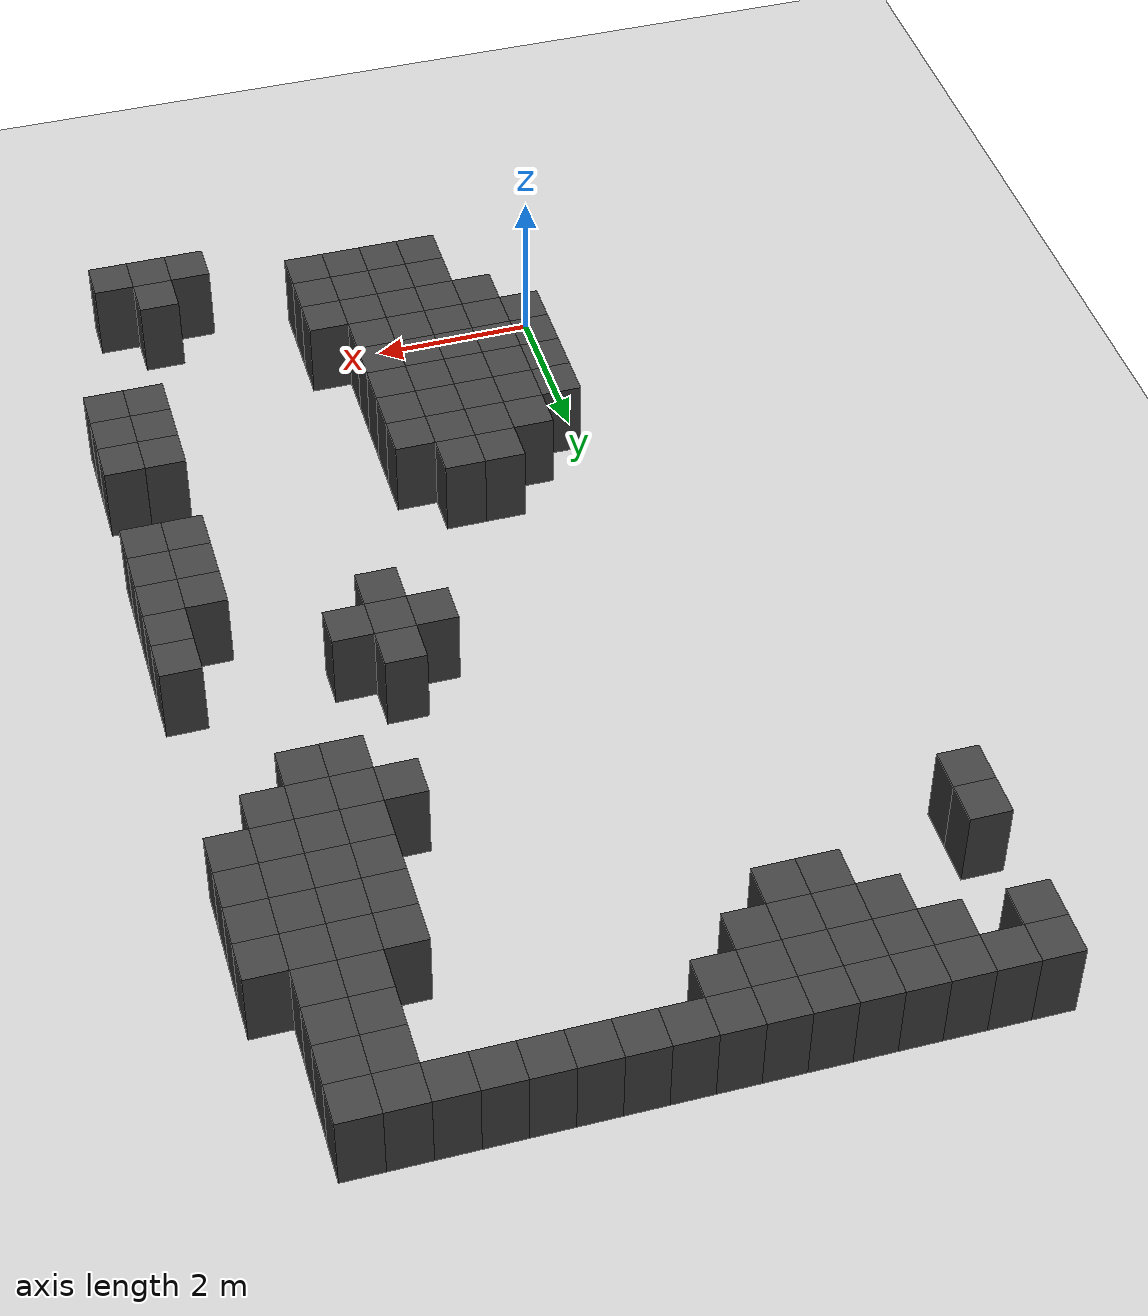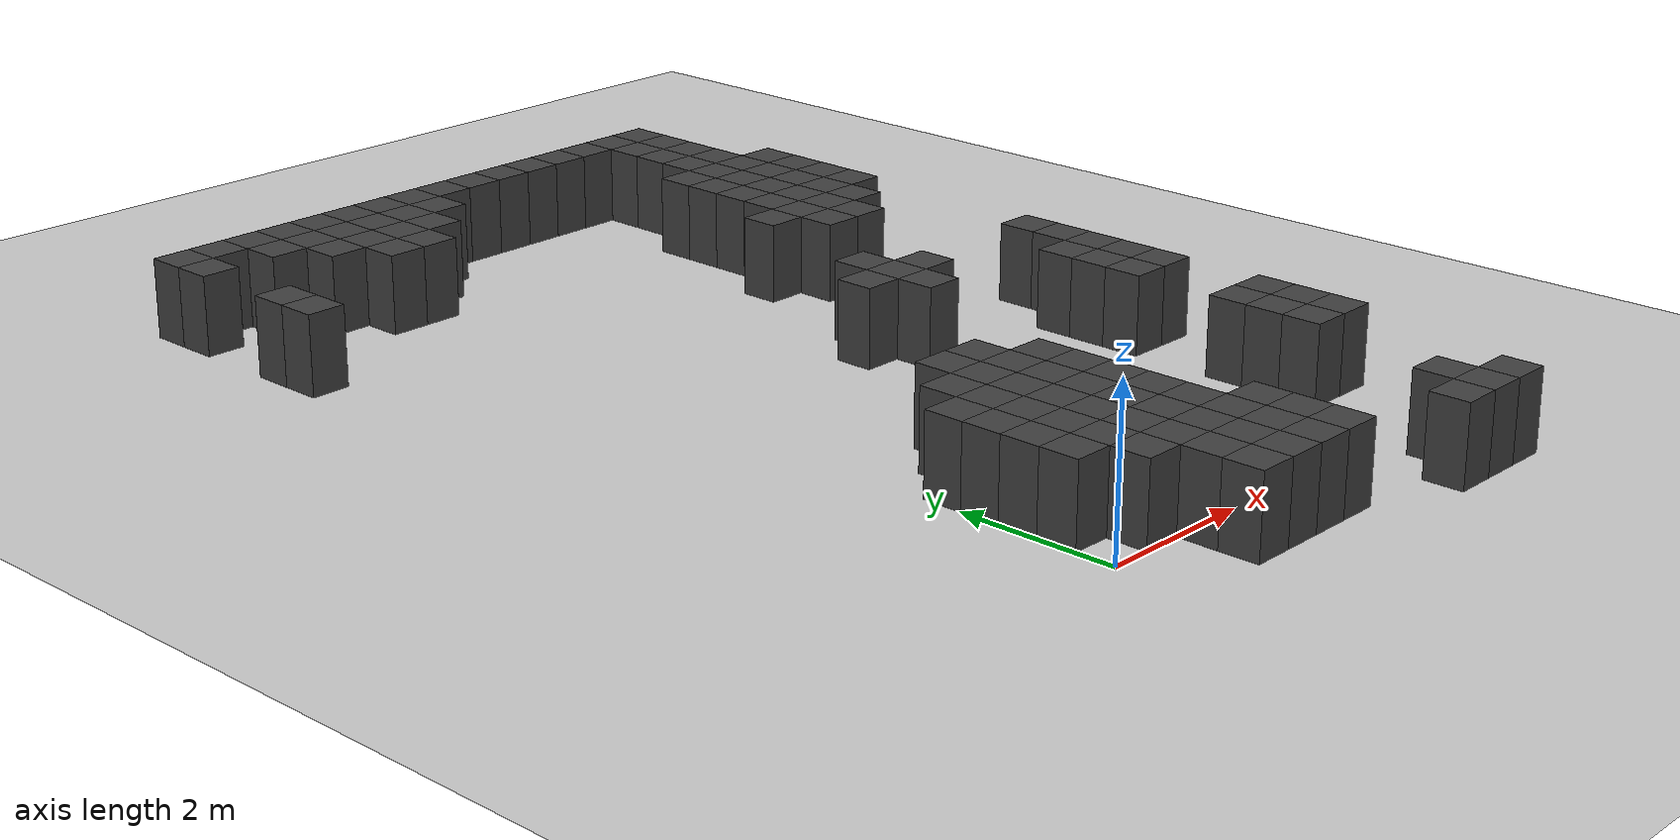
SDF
<sdf version="1.7">
 <world name="map_9381">
  <model name="ground_plane">
   <static>true</static>
   <link name="link">
    <collision name="collision">
     <geometry><plane><normal>0 0 1</normal><size>200 200</size></plane></geometry>
    </collision>
    <visual name="visual">
     <geometry><plane><normal>0 0 1</normal><size>200 200</size></plane></geometry>
     <material><ambient>0.8 0.8 0.8 1</ambient><diffuse>0.8 0.8 0.8 1</diffuse></material>
    </visual>
   </link>
  </model>
  <model name="maze_environment">
   <static>true</static>
   <link name="wall_20">
    <pose>-2.250 12.250 0.500 0 0 0</pose>
    <collision name="col"><geometry><box><size>0.5 0.5 1.0</size></box></geometry></collision>
    <visual name="vis">
     <geometry><box><size>0.5 0.5 1.0</size></box></geometry>
     <material><ambient>0.15 0.15 0.15 1</ambient><diffuse>0.25 0.25 0.25 1</diffuse></material>
    </visual>
   </link>
   <link name="wall_21">
    <pose>-1.750 12.250 0.500 0 0 0</pose>
    <collision name="col"><geometry><box><size>0.5 0.5 1.0</size></box></geometry></collision>
    <visual name="vis">
     <geometry><box><size>0.5 0.5 1.0</size></box></geometry>
     <material><ambient>0.15 0.15 0.15 1</ambient><diffuse>0.25 0.25 0.25 1</diffuse></material>
    </visual>
   </link>
   <link name="wall_22">
    <pose>-1.250 12.250 0.500 0 0 0</pose>
    <collision name="col"><geometry><box><size>0.5 0.5 1.0</size></box></geometry></collision>
    <visual name="vis">
     <geometry><box><size>0.5 0.5 1.0</size></box></geometry>
     <material><ambient>0.15 0.15 0.15 1</ambient><diffuse>0.25 0.25 0.25 1</diffuse></material>
    </visual>
   </link>
   <link name="wall_23">
    <pose>-0.750 12.250 0.500 0 0 0</pose>
    <collision name="col"><geometry><box><size>0.5 0.5 1.0</size></box></geometry></collision>
    <visual name="vis">
     <geometry><box><size>0.5 0.5 1.0</size></box></geometry>
     <material><ambient>0.15 0.15 0.15 1</ambient><diffuse>0.25 0.25 0.25 1</diffuse></material>
    </visual>
   </link>
   <link name="wall_24">
    <pose>-0.250 12.250 0.500 0 0 0</pose>
    <collision name="col"><geometry><box><size>0.5 0.5 1.0</size></box></geometry></collision>
    <visual name="vis">
     <geometry><box><size>0.5 0.5 1.0</size></box></geometry>
     <material><ambient>0.15 0.15 0.15 1</ambient><diffuse>0.25 0.25 0.25 1</diffuse></material>
    </visual>
   </link>
   <link name="wall_25">
    <pose>0.250 12.250 0.500 0 0 0</pose>
    <collision name="col"><geometry><box><size>0.5 0.5 1.0</size></box></geometry></collision>
    <visual name="vis">
     <geometry><box><size>0.5 0.5 1.0</size></box></geometry>
     <material><ambient>0.15 0.15 0.15 1</ambient><diffuse>0.25 0.25 0.25 1</diffuse></material>
    </visual>
   </link>
   <link name="wall_26">
    <pose>0.750 12.250 0.500 0 0 0</pose>
    <collision name="col"><geometry><box><size>0.5 0.5 1.0</size></box></geometry></collision>
    <visual name="vis">
     <geometry><box><size>0.5 0.5 1.0</size></box></geometry>
     <material><ambient>0.15 0.15 0.15 1</ambient><diffuse>0.25 0.25 0.25 1</diffuse></material>
    </visual>
   </link>
   <link name="wall_27">
    <pose>1.250 12.250 0.500 0 0 0</pose>
    <collision name="col"><geometry><box><size>0.5 0.5 1.0</size></box></geometry></collision>
    <visual name="vis">
     <geometry><box><size>0.5 0.5 1.0</size></box></geometry>
     <material><ambient>0.15 0.15 0.15 1</ambient><diffuse>0.25 0.25 0.25 1</diffuse></material>
    </visual>
   </link>
   <link name="wall_28">
    <pose>1.750 12.250 0.500 0 0 0</pose>
    <collision name="col"><geometry><box><size>0.5 0.5 1.0</size></box></geometry></collision>
    <visual name="vis">
     <geometry><box><size>0.5 0.5 1.0</size></box></geometry>
     <material><ambient>0.15 0.15 0.15 1</ambient><diffuse>0.25 0.25 0.25 1</diffuse></material>
    </visual>
   </link>
   <link name="wall_29">
    <pose>2.250 12.250 0.500 0 0 0</pose>
    <collision name="col"><geometry><box><size>0.5 0.5 1.0</size></box></geometry></collision>
    <visual name="vis">
     <geometry><box><size>0.5 0.5 1.0</size></box></geometry>
     <material><ambient>0.15 0.15 0.15 1</ambient><diffuse>0.25 0.25 0.25 1</diffuse></material>
    </visual>
   </link>
   <link name="wall_30">
    <pose>2.750 12.250 0.500 0 0 0</pose>
    <collision name="col"><geometry><box><size>0.5 0.5 1.0</size></box></geometry></collision>
    <visual name="vis">
     <geometry><box><size>0.5 0.5 1.0</size></box></geometry>
     <material><ambient>0.15 0.15 0.15 1</ambient><diffuse>0.25 0.25 0.25 1</diffuse></material>
    </visual>
   </link>
   <link name="wall_31">
    <pose>3.250 12.250 0.500 0 0 0</pose>
    <collision name="col"><geometry><box><size>0.5 0.5 1.0</size></box></geometry></collision>
    <visual name="vis">
     <geometry><box><size>0.5 0.5 1.0</size></box></geometry>
     <material><ambient>0.15 0.15 0.15 1</ambient><diffuse>0.25 0.25 0.25 1</diffuse></material>
    </visual>
   </link>
   <link name="wall_32">
    <pose>3.750 12.250 0.500 0 0 0</pose>
    <collision name="col"><geometry><box><size>0.5 0.5 1.0</size></box></geometry></collision>
    <visual name="vis">
     <geometry><box><size>0.5 0.5 1.0</size></box></geometry>
     <material><ambient>0.15 0.15 0.15 1</ambient><diffuse>0.25 0.25 0.25 1</diffuse></material>
    </visual>
   </link>
   <link name="wall_33">
    <pose>4.250 12.250 0.500 0 0 0</pose>
    <collision name="col"><geometry><box><size>0.5 0.5 1.0</size></box></geometry></collision>
    <visual name="vis">
     <geometry><box><size>0.5 0.5 1.0</size></box></geometry>
     <material><ambient>0.15 0.15 0.15 1</ambient><diffuse>0.25 0.25 0.25 1</diffuse></material>
    </visual>
   </link>
   <link name="wall_34">
    <pose>4.750 12.250 0.500 0 0 0</pose>
    <collision name="col"><geometry><box><size>0.5 0.5 1.0</size></box></geometry></collision>
    <visual name="vis">
     <geometry><box><size>0.5 0.5 1.0</size></box></geometry>
     <material><ambient>0.15 0.15 0.15 1</ambient><diffuse>0.25 0.25 0.25 1</diffuse></material>
    </visual>
   </link>
   <link name="wall_35">
    <pose>5.250 12.250 0.500 0 0 0</pose>
    <collision name="col"><geometry><box><size>0.5 0.5 1.0</size></box></geometry></collision>
    <visual name="vis">
     <geometry><box><size>0.5 0.5 1.0</size></box></geometry>
     <material><ambient>0.15 0.15 0.15 1</ambient><diffuse>0.25 0.25 0.25 1</diffuse></material>
    </visual>
   </link>
   <link name="wall_62">
    <pose>-2.250 11.750 0.500 0 0 0</pose>
    <collision name="col"><geometry><box><size>0.5 0.5 1.0</size></box></geometry></collision>
    <visual name="vis">
     <geometry><box><size>0.5 0.5 1.0</size></box></geometry>
     <material><ambient>0.15 0.15 0.15 1</ambient><diffuse>0.25 0.25 0.25 1</diffuse></material>
    </visual>
   </link>
   <link name="wall_63">
    <pose>-1.250 11.750 0.500 0 0 0</pose>
    <collision name="col"><geometry><box><size>0.5 0.5 1.0</size></box></geometry></collision>
    <visual name="vis">
     <geometry><box><size>0.5 0.5 1.0</size></box></geometry>
     <material><ambient>0.15 0.15 0.15 1</ambient><diffuse>0.25 0.25 0.25 1</diffuse></material>
    </visual>
   </link>
   <link name="wall_64">
    <pose>-0.750 11.750 0.500 0 0 0</pose>
    <collision name="col"><geometry><box><size>0.5 0.5 1.0</size></box></geometry></collision>
    <visual name="vis">
     <geometry><box><size>0.5 0.5 1.0</size></box></geometry>
     <material><ambient>0.15 0.15 0.15 1</ambient><diffuse>0.25 0.25 0.25 1</diffuse></material>
    </visual>
   </link>
   <link name="wall_65">
    <pose>-0.250 11.750 0.500 0 0 0</pose>
    <collision name="col"><geometry><box><size>0.5 0.5 1.0</size></box></geometry></collision>
    <visual name="vis">
     <geometry><box><size>0.5 0.5 1.0</size></box></geometry>
     <material><ambient>0.15 0.15 0.15 1</ambient><diffuse>0.25 0.25 0.25 1</diffuse></material>
    </visual>
   </link>
   <link name="wall_66">
    <pose>0.250 11.750 0.500 0 0 0</pose>
    <collision name="col"><geometry><box><size>0.5 0.5 1.0</size></box></geometry></collision>
    <visual name="vis">
     <geometry><box><size>0.5 0.5 1.0</size></box></geometry>
     <material><ambient>0.15 0.15 0.15 1</ambient><diffuse>0.25 0.25 0.25 1</diffuse></material>
    </visual>
   </link>
   <link name="wall_67">
    <pose>0.750 11.750 0.500 0 0 0</pose>
    <collision name="col"><geometry><box><size>0.5 0.5 1.0</size></box></geometry></collision>
    <visual name="vis">
     <geometry><box><size>0.5 0.5 1.0</size></box></geometry>
     <material><ambient>0.15 0.15 0.15 1</ambient><diffuse>0.25 0.25 0.25 1</diffuse></material>
    </visual>
   </link>
   <link name="wall_68">
    <pose>1.250 11.750 0.500 0 0 0</pose>
    <collision name="col"><geometry><box><size>0.5 0.5 1.0</size></box></geometry></collision>
    <visual name="vis">
     <geometry><box><size>0.5 0.5 1.0</size></box></geometry>
     <material><ambient>0.15 0.15 0.15 1</ambient><diffuse>0.25 0.25 0.25 1</diffuse></material>
    </visual>
   </link>
   <link name="wall_69">
    <pose>4.750 11.750 0.500 0 0 0</pose>
    <collision name="col"><geometry><box><size>0.5 0.5 1.0</size></box></geometry></collision>
    <visual name="vis">
     <geometry><box><size>0.5 0.5 1.0</size></box></geometry>
     <material><ambient>0.15 0.15 0.15 1</ambient><diffuse>0.25 0.25 0.25 1</diffuse></material>
    </visual>
   </link>
   <link name="wall_70">
    <pose>5.250 11.750 0.500 0 0 0</pose>
    <collision name="col"><geometry><box><size>0.5 0.5 1.0</size></box></geometry></collision>
    <visual name="vis">
     <geometry><box><size>0.5 0.5 1.0</size></box></geometry>
     <material><ambient>0.15 0.15 0.15 1</ambient><diffuse>0.25 0.25 0.25 1</diffuse></material>
    </visual>
   </link>
   <link name="wall_95">
    <pose>-0.750 11.250 0.500 0 0 0</pose>
    <collision name="col"><geometry><box><size>0.5 0.5 1.0</size></box></geometry></collision>
    <visual name="vis">
     <geometry><box><size>0.5 0.5 1.0</size></box></geometry>
     <material><ambient>0.15 0.15 0.15 1</ambient><diffuse>0.25 0.25 0.25 1</diffuse></material>
    </visual>
   </link>
   <link name="wall_96">
    <pose>-0.250 11.250 0.500 0 0 0</pose>
    <collision name="col"><geometry><box><size>0.5 0.5 1.0</size></box></geometry></collision>
    <visual name="vis">
     <geometry><box><size>0.5 0.5 1.0</size></box></geometry>
     <material><ambient>0.15 0.15 0.15 1</ambient><diffuse>0.25 0.25 0.25 1</diffuse></material>
    </visual>
   </link>
   <link name="wall_97">
    <pose>0.250 11.250 0.500 0 0 0</pose>
    <collision name="col"><geometry><box><size>0.5 0.5 1.0</size></box></geometry></collision>
    <visual name="vis">
     <geometry><box><size>0.5 0.5 1.0</size></box></geometry>
     <material><ambient>0.15 0.15 0.15 1</ambient><diffuse>0.25 0.25 0.25 1</diffuse></material>
    </visual>
   </link>
   <link name="wall_98">
    <pose>0.750 11.250 0.500 0 0 0</pose>
    <collision name="col"><geometry><box><size>0.5 0.5 1.0</size></box></geometry></collision>
    <visual name="vis">
     <geometry><box><size>0.5 0.5 1.0</size></box></geometry>
     <material><ambient>0.15 0.15 0.15 1</ambient><diffuse>0.25 0.25 0.25 1</diffuse></material>
    </visual>
   </link>
   <link name="wall_99">
    <pose>4.750 11.250 0.500 0 0 0</pose>
    <collision name="col"><geometry><box><size>0.5 0.5 1.0</size></box></geometry></collision>
    <visual name="vis">
     <geometry><box><size>0.5 0.5 1.0</size></box></geometry>
     <material><ambient>0.15 0.15 0.15 1</ambient><diffuse>0.25 0.25 0.25 1</diffuse></material>
    </visual>
   </link>
   <link name="wall_100">
    <pose>5.250 11.250 0.500 0 0 0</pose>
    <collision name="col"><geometry><box><size>0.5 0.5 1.0</size></box></geometry></collision>
    <visual name="vis">
     <geometry><box><size>0.5 0.5 1.0</size></box></geometry>
     <material><ambient>0.15 0.15 0.15 1</ambient><diffuse>0.25 0.25 0.25 1</diffuse></material>
    </visual>
   </link>
   <link name="wall_125">
    <pose>-0.250 10.750 0.500 0 0 0</pose>
    <collision name="col"><geometry><box><size>0.5 0.5 1.0</size></box></geometry></collision>
    <visual name="vis">
     <geometry><box><size>0.5 0.5 1.0</size></box></geometry>
     <material><ambient>0.15 0.15 0.15 1</ambient><diffuse>0.25 0.25 0.25 1</diffuse></material>
    </visual>
   </link>
   <link name="wall_126">
    <pose>0.250 10.750 0.500 0 0 0</pose>
    <collision name="col"><geometry><box><size>0.5 0.5 1.0</size></box></geometry></collision>
    <visual name="vis">
     <geometry><box><size>0.5 0.5 1.0</size></box></geometry>
     <material><ambient>0.15 0.15 0.15 1</ambient><diffuse>0.25 0.25 0.25 1</diffuse></material>
    </visual>
   </link>
   <link name="wall_127">
    <pose>4.750 10.750 0.500 0 0 0</pose>
    <collision name="col"><geometry><box><size>0.5 0.5 1.0</size></box></geometry></collision>
    <visual name="vis">
     <geometry><box><size>0.5 0.5 1.0</size></box></geometry>
     <material><ambient>0.15 0.15 0.15 1</ambient><diffuse>0.25 0.25 0.25 1</diffuse></material>
    </visual>
   </link>
   <link name="wall_128">
    <pose>5.250 10.750 0.500 0 0 0</pose>
    <collision name="col"><geometry><box><size>0.5 0.5 1.0</size></box></geometry></collision>
    <visual name="vis">
     <geometry><box><size>0.5 0.5 1.0</size></box></geometry>
     <material><ambient>0.15 0.15 0.15 1</ambient><diffuse>0.25 0.25 0.25 1</diffuse></material>
    </visual>
   </link>
   <link name="wall_151">
    <pose>-2.250 10.250 0.500 0 0 0</pose>
    <collision name="col"><geometry><box><size>0.5 0.5 1.0</size></box></geometry></collision>
    <visual name="vis">
     <geometry><box><size>0.5 0.5 1.0</size></box></geometry>
     <material><ambient>0.15 0.15 0.15 1</ambient><diffuse>0.25 0.25 0.25 1</diffuse></material>
    </visual>
   </link>
   <link name="wall_152">
    <pose>4.250 10.250 0.500 0 0 0</pose>
    <collision name="col"><geometry><box><size>0.5 0.5 1.0</size></box></geometry></collision>
    <visual name="vis">
     <geometry><box><size>0.5 0.5 1.0</size></box></geometry>
     <material><ambient>0.15 0.15 0.15 1</ambient><diffuse>0.25 0.25 0.25 1</diffuse></material>
    </visual>
   </link>
   <link name="wall_153">
    <pose>4.750 10.250 0.500 0 0 0</pose>
    <collision name="col"><geometry><box><size>0.5 0.5 1.0</size></box></geometry></collision>
    <visual name="vis">
     <geometry><box><size>0.5 0.5 1.0</size></box></geometry>
     <material><ambient>0.15 0.15 0.15 1</ambient><diffuse>0.25 0.25 0.25 1</diffuse></material>
    </visual>
   </link>
   <link name="wall_154">
    <pose>5.250 10.250 0.500 0 0 0</pose>
    <collision name="col"><geometry><box><size>0.5 0.5 1.0</size></box></geometry></collision>
    <visual name="vis">
     <geometry><box><size>0.5 0.5 1.0</size></box></geometry>
     <material><ambient>0.15 0.15 0.15 1</ambient><diffuse>0.25 0.25 0.25 1</diffuse></material>
    </visual>
   </link>
   <link name="wall_155">
    <pose>5.750 10.250 0.500 0 0 0</pose>
    <collision name="col"><geometry><box><size>0.5 0.5 1.0</size></box></geometry></collision>
    <visual name="vis">
     <geometry><box><size>0.5 0.5 1.0</size></box></geometry>
     <material><ambient>0.15 0.15 0.15 1</ambient><diffuse>0.25 0.25 0.25 1</diffuse></material>
    </visual>
   </link>
   <link name="wall_174">
    <pose>-2.250 9.750 0.500 0 0 0</pose>
    <collision name="col"><geometry><box><size>0.5 0.5 1.0</size></box></geometry></collision>
    <visual name="vis">
     <geometry><box><size>0.5 0.5 1.0</size></box></geometry>
     <material><ambient>0.15 0.15 0.15 1</ambient><diffuse>0.25 0.25 0.25 1</diffuse></material>
    </visual>
   </link>
   <link name="wall_175">
    <pose>4.250 9.750 0.500 0 0 0</pose>
    <collision name="col"><geometry><box><size>0.5 0.5 1.0</size></box></geometry></collision>
    <visual name="vis">
     <geometry><box><size>0.5 0.5 1.0</size></box></geometry>
     <material><ambient>0.15 0.15 0.15 1</ambient><diffuse>0.25 0.25 0.25 1</diffuse></material>
    </visual>
   </link>
   <link name="wall_176">
    <pose>4.750 9.750 0.500 0 0 0</pose>
    <collision name="col"><geometry><box><size>0.5 0.5 1.0</size></box></geometry></collision>
    <visual name="vis">
     <geometry><box><size>0.5 0.5 1.0</size></box></geometry>
     <material><ambient>0.15 0.15 0.15 1</ambient><diffuse>0.25 0.25 0.25 1</diffuse></material>
    </visual>
   </link>
   <link name="wall_177">
    <pose>5.250 9.750 0.500 0 0 0</pose>
    <collision name="col"><geometry><box><size>0.5 0.5 1.0</size></box></geometry></collision>
    <visual name="vis">
     <geometry><box><size>0.5 0.5 1.0</size></box></geometry>
     <material><ambient>0.15 0.15 0.15 1</ambient><diffuse>0.25 0.25 0.25 1</diffuse></material>
    </visual>
   </link>
   <link name="wall_178">
    <pose>5.750 9.750 0.500 0 0 0</pose>
    <collision name="col"><geometry><box><size>0.5 0.5 1.0</size></box></geometry></collision>
    <visual name="vis">
     <geometry><box><size>0.5 0.5 1.0</size></box></geometry>
     <material><ambient>0.15 0.15 0.15 1</ambient><diffuse>0.25 0.25 0.25 1</diffuse></material>
    </visual>
   </link>
   <link name="wall_190">
    <pose>4.250 9.250 0.500 0 0 0</pose>
    <collision name="col"><geometry><box><size>0.5 0.5 1.0</size></box></geometry></collision>
    <visual name="vis">
     <geometry><box><size>0.5 0.5 1.0</size></box></geometry>
     <material><ambient>0.15 0.15 0.15 1</ambient><diffuse>0.25 0.25 0.25 1</diffuse></material>
    </visual>
   </link>
   <link name="wall_191">
    <pose>4.750 9.250 0.500 0 0 0</pose>
    <collision name="col"><geometry><box><size>0.5 0.5 1.0</size></box></geometry></collision>
    <visual name="vis">
     <geometry><box><size>0.5 0.5 1.0</size></box></geometry>
     <material><ambient>0.15 0.15 0.15 1</ambient><diffuse>0.25 0.25 0.25 1</diffuse></material>
    </visual>
   </link>
   <link name="wall_192">
    <pose>5.250 9.250 0.500 0 0 0</pose>
    <collision name="col"><geometry><box><size>0.5 0.5 1.0</size></box></geometry></collision>
    <visual name="vis">
     <geometry><box><size>0.5 0.5 1.0</size></box></geometry>
     <material><ambient>0.15 0.15 0.15 1</ambient><diffuse>0.25 0.25 0.25 1</diffuse></material>
    </visual>
   </link>
   <link name="wall_193">
    <pose>5.750 9.250 0.500 0 0 0</pose>
    <collision name="col"><geometry><box><size>0.5 0.5 1.0</size></box></geometry></collision>
    <visual name="vis">
     <geometry><box><size>0.5 0.5 1.0</size></box></geometry>
     <material><ambient>0.15 0.15 0.15 1</ambient><diffuse>0.25 0.25 0.25 1</diffuse></material>
    </visual>
   </link>
   <link name="wall_198">
    <pose>4.250 8.750 0.500 0 0 0</pose>
    <collision name="col"><geometry><box><size>0.5 0.5 1.0</size></box></geometry></collision>
    <visual name="vis">
     <geometry><box><size>0.5 0.5 1.0</size></box></geometry>
     <material><ambient>0.15 0.15 0.15 1</ambient><diffuse>0.25 0.25 0.25 1</diffuse></material>
    </visual>
   </link>
   <link name="wall_199">
    <pose>4.750 8.750 0.500 0 0 0</pose>
    <collision name="col"><geometry><box><size>0.5 0.5 1.0</size></box></geometry></collision>
    <visual name="vis">
     <geometry><box><size>0.5 0.5 1.0</size></box></geometry>
     <material><ambient>0.15 0.15 0.15 1</ambient><diffuse>0.25 0.25 0.25 1</diffuse></material>
    </visual>
   </link>
   <link name="wall_200">
    <pose>5.250 8.750 0.500 0 0 0</pose>
    <collision name="col"><geometry><box><size>0.5 0.5 1.0</size></box></geometry></collision>
    <visual name="vis">
     <geometry><box><size>0.5 0.5 1.0</size></box></geometry>
     <material><ambient>0.15 0.15 0.15 1</ambient><diffuse>0.25 0.25 0.25 1</diffuse></material>
    </visual>
   </link>
   <link name="wall_201">
    <pose>5.750 8.750 0.500 0 0 0</pose>
    <collision name="col"><geometry><box><size>0.5 0.5 1.0</size></box></geometry></collision>
    <visual name="vis">
     <geometry><box><size>0.5 0.5 1.0</size></box></geometry>
     <material><ambient>0.15 0.15 0.15 1</ambient><diffuse>0.25 0.25 0.25 1</diffuse></material>
    </visual>
   </link>
   <link name="wall_204">
    <pose>3.750 8.250 0.500 0 0 0</pose>
    <collision name="col"><geometry><box><size>0.5 0.5 1.0</size></box></geometry></collision>
    <visual name="vis">
     <geometry><box><size>0.5 0.5 1.0</size></box></geometry>
     <material><ambient>0.15 0.15 0.15 1</ambient><diffuse>0.25 0.25 0.25 1</diffuse></material>
    </visual>
   </link>
   <link name="wall_205">
    <pose>4.250 8.250 0.500 0 0 0</pose>
    <collision name="col"><geometry><box><size>0.5 0.5 1.0</size></box></geometry></collision>
    <visual name="vis">
     <geometry><box><size>0.5 0.5 1.0</size></box></geometry>
     <material><ambient>0.15 0.15 0.15 1</ambient><diffuse>0.25 0.25 0.25 1</diffuse></material>
    </visual>
   </link>
   <link name="wall_206">
    <pose>4.750 8.250 0.500 0 0 0</pose>
    <collision name="col"><geometry><box><size>0.5 0.5 1.0</size></box></geometry></collision>
    <visual name="vis">
     <geometry><box><size>0.5 0.5 1.0</size></box></geometry>
     <material><ambient>0.15 0.15 0.15 1</ambient><diffuse>0.25 0.25 0.25 1</diffuse></material>
    </visual>
   </link>
   <link name="wall_207">
    <pose>5.250 8.250 0.500 0 0 0</pose>
    <collision name="col"><geometry><box><size>0.5 0.5 1.0</size></box></geometry></collision>
    <visual name="vis">
     <geometry><box><size>0.5 0.5 1.0</size></box></geometry>
     <material><ambient>0.15 0.15 0.15 1</ambient><diffuse>0.25 0.25 0.25 1</diffuse></material>
    </visual>
   </link>
   <link name="wall_212">
    <pose>4.250 7.750 0.500 0 0 0</pose>
    <collision name="col"><geometry><box><size>0.5 0.5 1.0</size></box></geometry></collision>
    <visual name="vis">
     <geometry><box><size>0.5 0.5 1.0</size></box></geometry>
     <material><ambient>0.15 0.15 0.15 1</ambient><diffuse>0.25 0.25 0.25 1</diffuse></material>
    </visual>
   </link>
   <link name="wall_213">
    <pose>4.750 7.750 0.500 0 0 0</pose>
    <collision name="col"><geometry><box><size>0.5 0.5 1.0</size></box></geometry></collision>
    <visual name="vis">
     <geometry><box><size>0.5 0.5 1.0</size></box></geometry>
     <material><ambient>0.15 0.15 0.15 1</ambient><diffuse>0.25 0.25 0.25 1</diffuse></material>
    </visual>
   </link>
   <link name="wall_249">
    <pose>3.250 6.250 0.500 0 0 0</pose>
    <collision name="col"><geometry><box><size>0.5 0.5 1.0</size></box></geometry></collision>
    <visual name="vis">
     <geometry><box><size>0.5 0.5 1.0</size></box></geometry>
     <material><ambient>0.15 0.15 0.15 1</ambient><diffuse>0.25 0.25 0.25 1</diffuse></material>
    </visual>
   </link>
   <link name="wall_263">
    <pose>2.750 5.750 0.500 0 0 0</pose>
    <collision name="col"><geometry><box><size>0.5 0.5 1.0</size></box></geometry></collision>
    <visual name="vis">
     <geometry><box><size>0.5 0.5 1.0</size></box></geometry>
     <material><ambient>0.15 0.15 0.15 1</ambient><diffuse>0.25 0.25 0.25 1</diffuse></material>
    </visual>
   </link>
   <link name="wall_264">
    <pose>3.250 5.750 0.500 0 0 0</pose>
    <collision name="col"><geometry><box><size>0.5 0.5 1.0</size></box></geometry></collision>
    <visual name="vis">
     <geometry><box><size>0.5 0.5 1.0</size></box></geometry>
     <material><ambient>0.15 0.15 0.15 1</ambient><diffuse>0.25 0.25 0.25 1</diffuse></material>
    </visual>
   </link>
   <link name="wall_265">
    <pose>3.750 5.750 0.500 0 0 0</pose>
    <collision name="col"><geometry><box><size>0.5 0.5 1.0</size></box></geometry></collision>
    <visual name="vis">
     <geometry><box><size>0.5 0.5 1.0</size></box></geometry>
     <material><ambient>0.15 0.15 0.15 1</ambient><diffuse>0.25 0.25 0.25 1</diffuse></material>
    </visual>
   </link>
   <link name="wall_266">
    <pose>5.750 5.750 0.500 0 0 0</pose>
    <collision name="col"><geometry><box><size>0.5 0.5 1.0</size></box></geometry></collision>
    <visual name="vis">
     <geometry><box><size>0.5 0.5 1.0</size></box></geometry>
     <material><ambient>0.15 0.15 0.15 1</ambient><diffuse>0.25 0.25 0.25 1</diffuse></material>
    </visual>
   </link>
   <link name="wall_274">
    <pose>3.250 5.250 0.500 0 0 0</pose>
    <collision name="col"><geometry><box><size>0.5 0.5 1.0</size></box></geometry></collision>
    <visual name="vis">
     <geometry><box><size>0.5 0.5 1.0</size></box></geometry>
     <material><ambient>0.15 0.15 0.15 1</ambient><diffuse>0.25 0.25 0.25 1</diffuse></material>
    </visual>
   </link>
   <link name="wall_275">
    <pose>5.750 5.250 0.500 0 0 0</pose>
    <collision name="col"><geometry><box><size>0.5 0.5 1.0</size></box></geometry></collision>
    <visual name="vis">
     <geometry><box><size>0.5 0.5 1.0</size></box></geometry>
     <material><ambient>0.15 0.15 0.15 1</ambient><diffuse>0.25 0.25 0.25 1</diffuse></material>
    </visual>
   </link>
   <link name="wall_280">
    <pose>5.250 4.750 0.500 0 0 0</pose>
    <collision name="col"><geometry><box><size>0.5 0.5 1.0</size></box></geometry></collision>
    <visual name="vis">
     <geometry><box><size>0.5 0.5 1.0</size></box></geometry>
     <material><ambient>0.15 0.15 0.15 1</ambient><diffuse>0.25 0.25 0.25 1</diffuse></material>
    </visual>
   </link>
   <link name="wall_281">
    <pose>5.750 4.750 0.500 0 0 0</pose>
    <collision name="col"><geometry><box><size>0.5 0.5 1.0</size></box></geometry></collision>
    <visual name="vis">
     <geometry><box><size>0.5 0.5 1.0</size></box></geometry>
     <material><ambient>0.15 0.15 0.15 1</ambient><diffuse>0.25 0.25 0.25 1</diffuse></material>
    </visual>
   </link>
   <link name="wall_288">
    <pose>5.250 4.250 0.500 0 0 0</pose>
    <collision name="col"><geometry><box><size>0.5 0.5 1.0</size></box></geometry></collision>
    <visual name="vis">
     <geometry><box><size>0.5 0.5 1.0</size></box></geometry>
     <material><ambient>0.15 0.15 0.15 1</ambient><diffuse>0.25 0.25 0.25 1</diffuse></material>
    </visual>
   </link>
   <link name="wall_289">
    <pose>5.750 4.250 0.500 0 0 0</pose>
    <collision name="col"><geometry><box><size>0.5 0.5 1.0</size></box></geometry></collision>
    <visual name="vis">
     <geometry><box><size>0.5 0.5 1.0</size></box></geometry>
     <material><ambient>0.15 0.15 0.15 1</ambient><diffuse>0.25 0.25 0.25 1</diffuse></material>
    </visual>
   </link>
   <link name="wall_296">
    <pose>5.250 3.750 0.500 0 0 0</pose>
    <collision name="col"><geometry><box><size>0.5 0.5 1.0</size></box></geometry></collision>
    <visual name="vis">
     <geometry><box><size>0.5 0.5 1.0</size></box></geometry>
     <material><ambient>0.15 0.15 0.15 1</ambient><diffuse>0.25 0.25 0.25 1</diffuse></material>
    </visual>
   </link>
   <link name="wall_297">
    <pose>5.750 3.750 0.500 0 0 0</pose>
    <collision name="col"><geometry><box><size>0.5 0.5 1.0</size></box></geometry></collision>
    <visual name="vis">
     <geometry><box><size>0.5 0.5 1.0</size></box></geometry>
     <material><ambient>0.15 0.15 0.15 1</ambient><diffuse>0.25 0.25 0.25 1</diffuse></material>
    </visual>
   </link>
   <link name="wall_302">
    <pose>1.250 3.250 0.500 0 0 0</pose>
    <collision name="col"><geometry><box><size>0.5 0.5 1.0</size></box></geometry></collision>
    <visual name="vis">
     <geometry><box><size>0.5 0.5 1.0</size></box></geometry>
     <material><ambient>0.15 0.15 0.15 1</ambient><diffuse>0.25 0.25 0.25 1</diffuse></material>
    </visual>
   </link>
   <link name="wall_303">
    <pose>1.750 3.250 0.500 0 0 0</pose>
    <collision name="col"><geometry><box><size>0.5 0.5 1.0</size></box></geometry></collision>
    <visual name="vis">
     <geometry><box><size>0.5 0.5 1.0</size></box></geometry>
     <material><ambient>0.15 0.15 0.15 1</ambient><diffuse>0.25 0.25 0.25 1</diffuse></material>
    </visual>
   </link>
   <link name="wall_306">
    <pose>0.750 2.750 0.500 0 0 0</pose>
    <collision name="col"><geometry><box><size>0.5 0.5 1.0</size></box></geometry></collision>
    <visual name="vis">
     <geometry><box><size>0.5 0.5 1.0</size></box></geometry>
     <material><ambient>0.15 0.15 0.15 1</ambient><diffuse>0.25 0.25 0.25 1</diffuse></material>
    </visual>
   </link>
   <link name="wall_307">
    <pose>1.250 2.750 0.500 0 0 0</pose>
    <collision name="col"><geometry><box><size>0.5 0.5 1.0</size></box></geometry></collision>
    <visual name="vis">
     <geometry><box><size>0.5 0.5 1.0</size></box></geometry>
     <material><ambient>0.15 0.15 0.15 1</ambient><diffuse>0.25 0.25 0.25 1</diffuse></material>
    </visual>
   </link>
   <link name="wall_308">
    <pose>1.750 2.750 0.500 0 0 0</pose>
    <collision name="col"><geometry><box><size>0.5 0.5 1.0</size></box></geometry></collision>
    <visual name="vis">
     <geometry><box><size>0.5 0.5 1.0</size></box></geometry>
     <material><ambient>0.15 0.15 0.15 1</ambient><diffuse>0.25 0.25 0.25 1</diffuse></material>
    </visual>
   </link>
   <link name="wall_309">
    <pose>2.250 2.750 0.500 0 0 0</pose>
    <collision name="col"><geometry><box><size>0.5 0.5 1.0</size></box></geometry></collision>
    <visual name="vis">
     <geometry><box><size>0.5 0.5 1.0</size></box></geometry>
     <material><ambient>0.15 0.15 0.15 1</ambient><diffuse>0.25 0.25 0.25 1</diffuse></material>
    </visual>
   </link>
   <link name="wall_312">
    <pose>0.250 2.250 0.500 0 0 0</pose>
    <collision name="col"><geometry><box><size>0.5 0.5 1.0</size></box></geometry></collision>
    <visual name="vis">
     <geometry><box><size>0.5 0.5 1.0</size></box></geometry>
     <material><ambient>0.15 0.15 0.15 1</ambient><diffuse>0.25 0.25 0.25 1</diffuse></material>
    </visual>
   </link>
   <link name="wall_313">
    <pose>0.750 2.250 0.500 0 0 0</pose>
    <collision name="col"><geometry><box><size>0.5 0.5 1.0</size></box></geometry></collision>
    <visual name="vis">
     <geometry><box><size>0.5 0.5 1.0</size></box></geometry>
     <material><ambient>0.15 0.15 0.15 1</ambient><diffuse>0.25 0.25 0.25 1</diffuse></material>
    </visual>
   </link>
   <link name="wall_314">
    <pose>1.250 2.250 0.500 0 0 0</pose>
    <collision name="col"><geometry><box><size>0.5 0.5 1.0</size></box></geometry></collision>
    <visual name="vis">
     <geometry><box><size>0.5 0.5 1.0</size></box></geometry>
     <material><ambient>0.15 0.15 0.15 1</ambient><diffuse>0.25 0.25 0.25 1</diffuse></material>
    </visual>
   </link>
   <link name="wall_315">
    <pose>1.750 2.250 0.500 0 0 0</pose>
    <collision name="col"><geometry><box><size>0.5 0.5 1.0</size></box></geometry></collision>
    <visual name="vis">
     <geometry><box><size>0.5 0.5 1.0</size></box></geometry>
     <material><ambient>0.15 0.15 0.15 1</ambient><diffuse>0.25 0.25 0.25 1</diffuse></material>
    </visual>
   </link>
   <link name="wall_316">
    <pose>2.250 2.250 0.500 0 0 0</pose>
    <collision name="col"><geometry><box><size>0.5 0.5 1.0</size></box></geometry></collision>
    <visual name="vis">
     <geometry><box><size>0.5 0.5 1.0</size></box></geometry>
     <material><ambient>0.15 0.15 0.15 1</ambient><diffuse>0.25 0.25 0.25 1</diffuse></material>
    </visual>
   </link>
   <link name="wall_317">
    <pose>5.250 2.250 0.500 0 0 0</pose>
    <collision name="col"><geometry><box><size>0.5 0.5 1.0</size></box></geometry></collision>
    <visual name="vis">
     <geometry><box><size>0.5 0.5 1.0</size></box></geometry>
     <material><ambient>0.15 0.15 0.15 1</ambient><diffuse>0.25 0.25 0.25 1</diffuse></material>
    </visual>
   </link>
   <link name="wall_318">
    <pose>5.750 2.250 0.500 0 0 0</pose>
    <collision name="col"><geometry><box><size>0.5 0.5 1.0</size></box></geometry></collision>
    <visual name="vis">
     <geometry><box><size>0.5 0.5 1.0</size></box></geometry>
     <material><ambient>0.15 0.15 0.15 1</ambient><diffuse>0.25 0.25 0.25 1</diffuse></material>
    </visual>
   </link>
   <link name="wall_321">
    <pose>0.250 1.750 0.500 0 0 0</pose>
    <collision name="col"><geometry><box><size>0.5 0.5 1.0</size></box></geometry></collision>
    <visual name="vis">
     <geometry><box><size>0.5 0.5 1.0</size></box></geometry>
     <material><ambient>0.15 0.15 0.15 1</ambient><diffuse>0.25 0.25 0.25 1</diffuse></material>
    </visual>
   </link>
   <link name="wall_322">
    <pose>0.750 1.750 0.500 0 0 0</pose>
    <collision name="col"><geometry><box><size>0.5 0.5 1.0</size></box></geometry></collision>
    <visual name="vis">
     <geometry><box><size>0.5 0.5 1.0</size></box></geometry>
     <material><ambient>0.15 0.15 0.15 1</ambient><diffuse>0.25 0.25 0.25 1</diffuse></material>
    </visual>
   </link>
   <link name="wall_323">
    <pose>1.250 1.750 0.500 0 0 0</pose>
    <collision name="col"><geometry><box><size>0.5 0.5 1.0</size></box></geometry></collision>
    <visual name="vis">
     <geometry><box><size>0.5 0.5 1.0</size></box></geometry>
     <material><ambient>0.15 0.15 0.15 1</ambient><diffuse>0.25 0.25 0.25 1</diffuse></material>
    </visual>
   </link>
   <link name="wall_324">
    <pose>1.750 1.750 0.500 0 0 0</pose>
    <collision name="col"><geometry><box><size>0.5 0.5 1.0</size></box></geometry></collision>
    <visual name="vis">
     <geometry><box><size>0.5 0.5 1.0</size></box></geometry>
     <material><ambient>0.15 0.15 0.15 1</ambient><diffuse>0.25 0.25 0.25 1</diffuse></material>
    </visual>
   </link>
   <link name="wall_325">
    <pose>2.250 1.750 0.500 0 0 0</pose>
    <collision name="col"><geometry><box><size>0.5 0.5 1.0</size></box></geometry></collision>
    <visual name="vis">
     <geometry><box><size>0.5 0.5 1.0</size></box></geometry>
     <material><ambient>0.15 0.15 0.15 1</ambient><diffuse>0.25 0.25 0.25 1</diffuse></material>
    </visual>
   </link>
   <link name="wall_326">
    <pose>5.250 1.750 0.500 0 0 0</pose>
    <collision name="col"><geometry><box><size>0.5 0.5 1.0</size></box></geometry></collision>
    <visual name="vis">
     <geometry><box><size>0.5 0.5 1.0</size></box></geometry>
     <material><ambient>0.15 0.15 0.15 1</ambient><diffuse>0.25 0.25 0.25 1</diffuse></material>
    </visual>
   </link>
   <link name="wall_327">
    <pose>5.750 1.750 0.500 0 0 0</pose>
    <collision name="col"><geometry><box><size>0.5 0.5 1.0</size></box></geometry></collision>
    <visual name="vis">
     <geometry><box><size>0.5 0.5 1.0</size></box></geometry>
     <material><ambient>0.15 0.15 0.15 1</ambient><diffuse>0.25 0.25 0.25 1</diffuse></material>
    </visual>
   </link>
   <link name="wall_330">
    <pose>0.250 1.250 0.500 0 0 0</pose>
    <collision name="col"><geometry><box><size>0.5 0.5 1.0</size></box></geometry></collision>
    <visual name="vis">
     <geometry><box><size>0.5 0.5 1.0</size></box></geometry>
     <material><ambient>0.15 0.15 0.15 1</ambient><diffuse>0.25 0.25 0.25 1</diffuse></material>
    </visual>
   </link>
   <link name="wall_331">
    <pose>0.750 1.250 0.500 0 0 0</pose>
    <collision name="col"><geometry><box><size>0.5 0.5 1.0</size></box></geometry></collision>
    <visual name="vis">
     <geometry><box><size>0.5 0.5 1.0</size></box></geometry>
     <material><ambient>0.15 0.15 0.15 1</ambient><diffuse>0.25 0.25 0.25 1</diffuse></material>
    </visual>
   </link>
   <link name="wall_332">
    <pose>1.250 1.250 0.500 0 0 0</pose>
    <collision name="col"><geometry><box><size>0.5 0.5 1.0</size></box></geometry></collision>
    <visual name="vis">
     <geometry><box><size>0.5 0.5 1.0</size></box></geometry>
     <material><ambient>0.15 0.15 0.15 1</ambient><diffuse>0.25 0.25 0.25 1</diffuse></material>
    </visual>
   </link>
   <link name="wall_333">
    <pose>1.750 1.250 0.500 0 0 0</pose>
    <collision name="col"><geometry><box><size>0.5 0.5 1.0</size></box></geometry></collision>
    <visual name="vis">
     <geometry><box><size>0.5 0.5 1.0</size></box></geometry>
     <material><ambient>0.15 0.15 0.15 1</ambient><diffuse>0.25 0.25 0.25 1</diffuse></material>
    </visual>
   </link>
   <link name="wall_334">
    <pose>2.250 1.250 0.500 0 0 0</pose>
    <collision name="col"><geometry><box><size>0.5 0.5 1.0</size></box></geometry></collision>
    <visual name="vis">
     <geometry><box><size>0.5 0.5 1.0</size></box></geometry>
     <material><ambient>0.15 0.15 0.15 1</ambient><diffuse>0.25 0.25 0.25 1</diffuse></material>
    </visual>
   </link>
   <link name="wall_335">
    <pose>5.250 1.250 0.500 0 0 0</pose>
    <collision name="col"><geometry><box><size>0.5 0.5 1.0</size></box></geometry></collision>
    <visual name="vis">
     <geometry><box><size>0.5 0.5 1.0</size></box></geometry>
     <material><ambient>0.15 0.15 0.15 1</ambient><diffuse>0.25 0.25 0.25 1</diffuse></material>
    </visual>
   </link>
   <link name="wall_336">
    <pose>5.750 1.250 0.500 0 0 0</pose>
    <collision name="col"><geometry><box><size>0.5 0.5 1.0</size></box></geometry></collision>
    <visual name="vis">
     <geometry><box><size>0.5 0.5 1.0</size></box></geometry>
     <material><ambient>0.15 0.15 0.15 1</ambient><diffuse>0.25 0.25 0.25 1</diffuse></material>
    </visual>
   </link>
   <link name="wall_341">
    <pose>0.250 0.750 0.500 0 0 0</pose>
    <collision name="col"><geometry><box><size>0.5 0.5 1.0</size></box></geometry></collision>
    <visual name="vis">
     <geometry><box><size>0.5 0.5 1.0</size></box></geometry>
     <material><ambient>0.15 0.15 0.15 1</ambient><diffuse>0.25 0.25 0.25 1</diffuse></material>
    </visual>
   </link>
   <link name="wall_342">
    <pose>0.750 0.750 0.500 0 0 0</pose>
    <collision name="col"><geometry><box><size>0.5 0.5 1.0</size></box></geometry></collision>
    <visual name="vis">
     <geometry><box><size>0.5 0.5 1.0</size></box></geometry>
     <material><ambient>0.15 0.15 0.15 1</ambient><diffuse>0.25 0.25 0.25 1</diffuse></material>
    </visual>
   </link>
   <link name="wall_343">
    <pose>1.250 0.750 0.500 0 0 0</pose>
    <collision name="col"><geometry><box><size>0.5 0.5 1.0</size></box></geometry></collision>
    <visual name="vis">
     <geometry><box><size>0.5 0.5 1.0</size></box></geometry>
     <material><ambient>0.15 0.15 0.15 1</ambient><diffuse>0.25 0.25 0.25 1</diffuse></material>
    </visual>
   </link>
   <link name="wall_344">
    <pose>1.750 0.750 0.500 0 0 0</pose>
    <collision name="col"><geometry><box><size>0.5 0.5 1.0</size></box></geometry></collision>
    <visual name="vis">
     <geometry><box><size>0.5 0.5 1.0</size></box></geometry>
     <material><ambient>0.15 0.15 0.15 1</ambient><diffuse>0.25 0.25 0.25 1</diffuse></material>
    </visual>
   </link>
   <link name="wall_345">
    <pose>2.250 0.750 0.500 0 0 0</pose>
    <collision name="col"><geometry><box><size>0.5 0.5 1.0</size></box></geometry></collision>
    <visual name="vis">
     <geometry><box><size>0.5 0.5 1.0</size></box></geometry>
     <material><ambient>0.15 0.15 0.15 1</ambient><diffuse>0.25 0.25 0.25 1</diffuse></material>
    </visual>
   </link>
   <link name="wall_354">
    <pose>0.750 0.250 0.500 0 0 0</pose>
    <collision name="col"><geometry><box><size>0.5 0.5 1.0</size></box></geometry></collision>
    <visual name="vis">
     <geometry><box><size>0.5 0.5 1.0</size></box></geometry>
     <material><ambient>0.15 0.15 0.15 1</ambient><diffuse>0.25 0.25 0.25 1</diffuse></material>
    </visual>
   </link>
   <link name="wall_355">
    <pose>1.250 0.250 0.500 0 0 0</pose>
    <collision name="col"><geometry><box><size>0.5 0.5 1.0</size></box></geometry></collision>
    <visual name="vis">
     <geometry><box><size>0.5 0.5 1.0</size></box></geometry>
     <material><ambient>0.15 0.15 0.15 1</ambient><diffuse>0.25 0.25 0.25 1</diffuse></material>
    </visual>
   </link>
   <link name="wall_356">
    <pose>1.750 0.250 0.500 0 0 0</pose>
    <collision name="col"><geometry><box><size>0.5 0.5 1.0</size></box></geometry></collision>
    <visual name="vis">
     <geometry><box><size>0.5 0.5 1.0</size></box></geometry>
     <material><ambient>0.15 0.15 0.15 1</ambient><diffuse>0.25 0.25 0.25 1</diffuse></material>
    </visual>
   </link>
   <link name="wall_357">
    <pose>2.250 0.250 0.500 0 0 0</pose>
    <collision name="col"><geometry><box><size>0.5 0.5 1.0</size></box></geometry></collision>
    <visual name="vis">
     <geometry><box><size>0.5 0.5 1.0</size></box></geometry>
     <material><ambient>0.15 0.15 0.15 1</ambient><diffuse>0.25 0.25 0.25 1</diffuse></material>
    </visual>
   </link>
   <link name="wall_358">
    <pose>2.750 0.250 0.500 0 0 0</pose>
    <collision name="col"><geometry><box><size>0.5 0.5 1.0</size></box></geometry></collision>
    <visual name="vis">
     <geometry><box><size>0.5 0.5 1.0</size></box></geometry>
     <material><ambient>0.15 0.15 0.15 1</ambient><diffuse>0.25 0.25 0.25 1</diffuse></material>
    </visual>
   </link>
   <link name="wall_372">
    <pose>1.250 -0.250 0.500 0 0 0</pose>
    <collision name="col"><geometry><box><size>0.5 0.5 1.0</size></box></geometry></collision>
    <visual name="vis">
     <geometry><box><size>0.5 0.5 1.0</size></box></geometry>
     <material><ambient>0.15 0.15 0.15 1</ambient><diffuse>0.25 0.25 0.25 1</diffuse></material>
    </visual>
   </link>
   <link name="wall_373">
    <pose>1.750 -0.250 0.500 0 0 0</pose>
    <collision name="col"><geometry><box><size>0.5 0.5 1.0</size></box></geometry></collision>
    <visual name="vis">
     <geometry><box><size>0.5 0.5 1.0</size></box></geometry>
     <material><ambient>0.15 0.15 0.15 1</ambient><diffuse>0.25 0.25 0.25 1</diffuse></material>
    </visual>
   </link>
   <link name="wall_374">
    <pose>2.250 -0.250 0.500 0 0 0</pose>
    <collision name="col"><geometry><box><size>0.5 0.5 1.0</size></box></geometry></collision>
    <visual name="vis">
     <geometry><box><size>0.5 0.5 1.0</size></box></geometry>
     <material><ambient>0.15 0.15 0.15 1</ambient><diffuse>0.25 0.25 0.25 1</diffuse></material>
    </visual>
   </link>
   <link name="wall_375">
    <pose>2.750 -0.250 0.500 0 0 0</pose>
    <collision name="col"><geometry><box><size>0.5 0.5 1.0</size></box></geometry></collision>
    <visual name="vis">
     <geometry><box><size>0.5 0.5 1.0</size></box></geometry>
     <material><ambient>0.15 0.15 0.15 1</ambient><diffuse>0.25 0.25 0.25 1</diffuse></material>
    </visual>
   </link>
   <link name="wall_391">
    <pose>1.250 -0.750 0.500 0 0 0</pose>
    <collision name="col"><geometry><box><size>0.5 0.5 1.0</size></box></geometry></collision>
    <visual name="vis">
     <geometry><box><size>0.5 0.5 1.0</size></box></geometry>
     <material><ambient>0.15 0.15 0.15 1</ambient><diffuse>0.25 0.25 0.25 1</diffuse></material>
    </visual>
   </link>
   <link name="wall_392">
    <pose>1.750 -0.750 0.500 0 0 0</pose>
    <collision name="col"><geometry><box><size>0.5 0.5 1.0</size></box></geometry></collision>
    <visual name="vis">
     <geometry><box><size>0.5 0.5 1.0</size></box></geometry>
     <material><ambient>0.15 0.15 0.15 1</ambient><diffuse>0.25 0.25 0.25 1</diffuse></material>
    </visual>
   </link>
   <link name="wall_393">
    <pose>2.250 -0.750 0.500 0 0 0</pose>
    <collision name="col"><geometry><box><size>0.5 0.5 1.0</size></box></geometry></collision>
    <visual name="vis">
     <geometry><box><size>0.5 0.5 1.0</size></box></geometry>
     <material><ambient>0.15 0.15 0.15 1</ambient><diffuse>0.25 0.25 0.25 1</diffuse></material>
    </visual>
   </link>
   <link name="wall_394">
    <pose>2.750 -0.750 0.500 0 0 0</pose>
    <collision name="col"><geometry><box><size>0.5 0.5 1.0</size></box></geometry></collision>
    <visual name="vis">
     <geometry><box><size>0.5 0.5 1.0</size></box></geometry>
     <material><ambient>0.15 0.15 0.15 1</ambient><diffuse>0.25 0.25 0.25 1</diffuse></material>
    </visual>
   </link>
   <link name="wall_395">
    <pose>4.750 -0.750 0.500 0 0 0</pose>
    <collision name="col"><geometry><box><size>0.5 0.5 1.0</size></box></geometry></collision>
    <visual name="vis">
     <geometry><box><size>0.5 0.5 1.0</size></box></geometry>
     <material><ambient>0.15 0.15 0.15 1</ambient><diffuse>0.25 0.25 0.25 1</diffuse></material>
    </visual>
   </link>
   <link name="wall_415">
    <pose>4.250 -1.250 0.500 0 0 0</pose>
    <collision name="col"><geometry><box><size>0.5 0.5 1.0</size></box></geometry></collision>
    <visual name="vis">
     <geometry><box><size>0.5 0.5 1.0</size></box></geometry>
     <material><ambient>0.15 0.15 0.15 1</ambient><diffuse>0.25 0.25 0.25 1</diffuse></material>
    </visual>
   </link>
   <link name="wall_416">
    <pose>4.750 -1.250 0.500 0 0 0</pose>
    <collision name="col"><geometry><box><size>0.5 0.5 1.0</size></box></geometry></collision>
    <visual name="vis">
     <geometry><box><size>0.5 0.5 1.0</size></box></geometry>
     <material><ambient>0.15 0.15 0.15 1</ambient><diffuse>0.25 0.25 0.25 1</diffuse></material>
    </visual>
   </link>
   <link name="wall_417">
    <pose>5.250 -1.250 0.500 0 0 0</pose>
    <collision name="col"><geometry><box><size>0.5 0.5 1.0</size></box></geometry></collision>
    <visual name="vis">
     <geometry><box><size>0.5 0.5 1.0</size></box></geometry>
     <material><ambient>0.15 0.15 0.15 1</ambient><diffuse>0.25 0.25 0.25 1</diffuse></material>
    </visual>
   </link>
  </model>
 </world>
</sdf>
